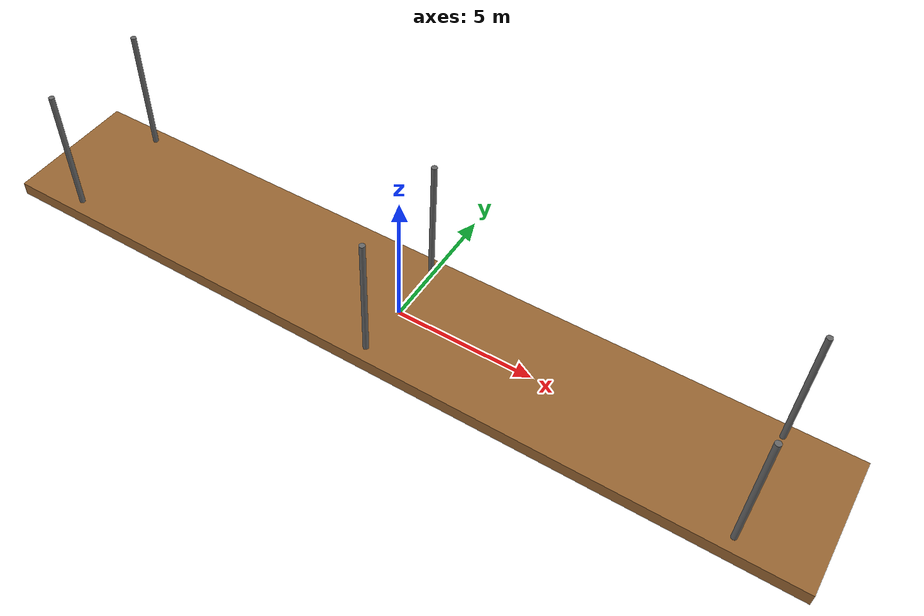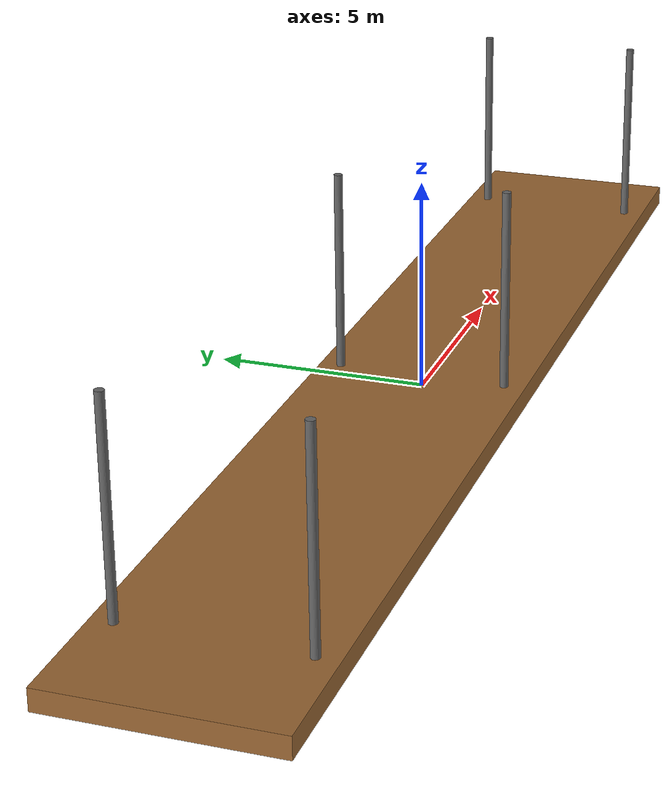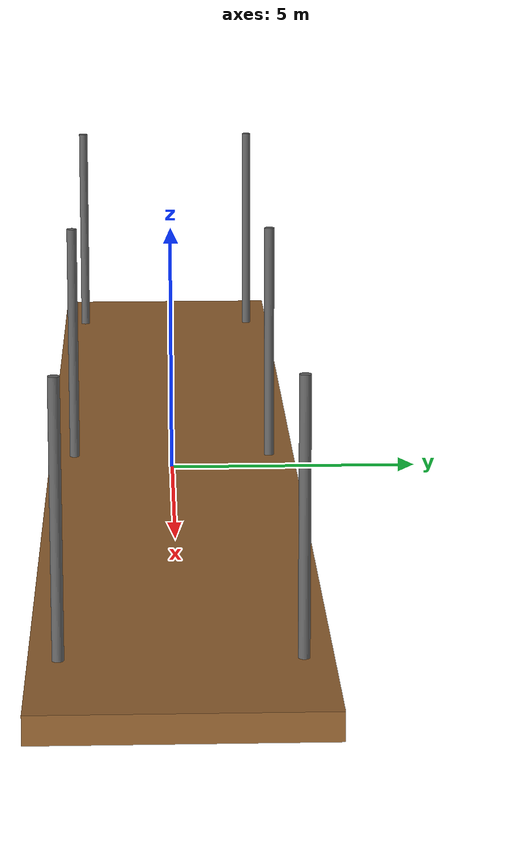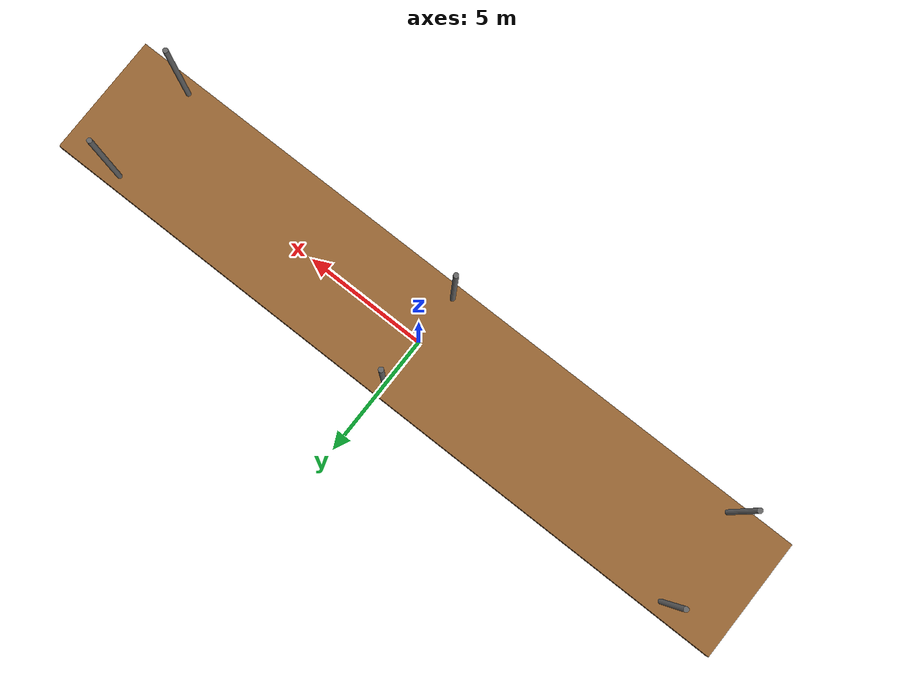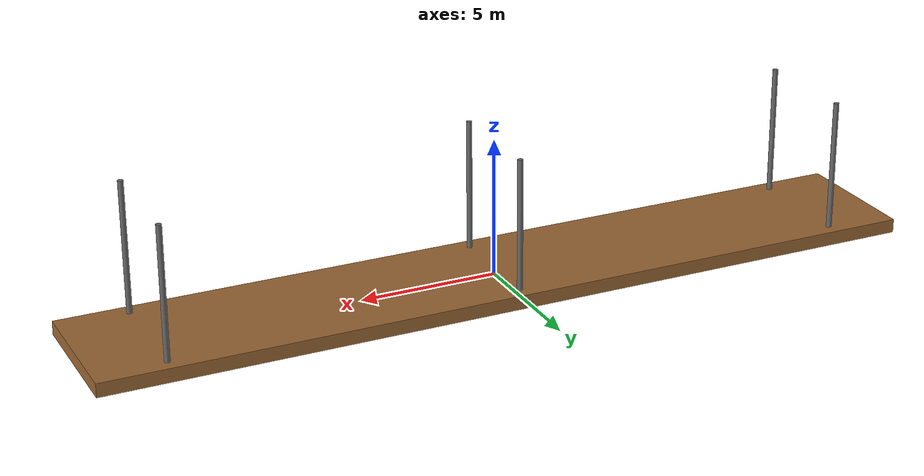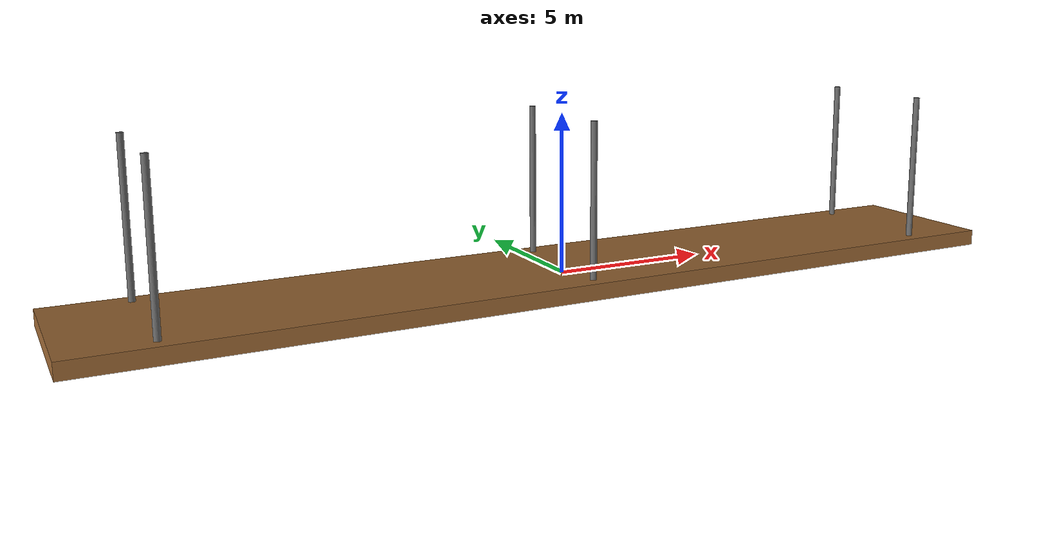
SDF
<?xml version="1.0" ?>
<sdf version="1.9">
  <model name="dock_station">
    <static>True</static>
    <link name="dock_base">
      <pose>0 0 0 0 0 0</pose>
      <!-- Dock Platform -->
      <visual name="dock_platform_visual">
        <geometry>
          <box>
            <size>30 5 0.5</size> <!-- Extended length for 3 WAM-Vs -->
          </box>
        </geometry>
        <material>
          <ambient>0.6 0.4 0.2 1.0</ambient> <!-- Wood-like color -->
          <diffuse>0.6 0.4 0.2 1.0</diffuse>
        </material>
      </visual>
      <collision name="dock_platform_collision">
        <geometry>
          <box>
            <size>30 5 0.5</size> <!-- Extended length for 3 WAM-Vs -->
          </box>
        </geometry>
      </collision>
      <inertial>
        <mass>1500.0</mass>
        <pose>0 0 0 0 0 0</pose>
        <inertia>
          <ixx>416.67</ixx> <!-- Adjusted for new size -->
          <iyy>18750.0</iyy>
          <izz>18750.0</izz>
          <ixy>0.0</ixy>
          <ixz>0.0</ixz>
          <iyz>0.0</iyz>
        </inertia>
      </inertial>
    </link>

    <!-- Left Vertical Poles -->
    <link name="left_pole_1">
      <pose>-12.5 2.0 2.5 0 0 0</pose>
      <visual name="left_pole_1_visual">
        <geometry>
          <cylinder>
            <radius>0.1</radius>
            <length>5</length>
          </cylinder>
        </geometry>
        <material>
          <ambient>0.4 0.4 0.4 1.0</ambient>
          <diffuse>0.4 0.4 0.4 1.0</diffuse>
        </material>
      </visual>
      <collision name="left_pole_1_collision">
        <geometry>
          <cylinder>
            <radius>0.1</radius>
            <length>5</length>
          </cylinder>
        </geometry>
      </collision>
      <inertial>
        <mass>50.0</mass>
        <inertia>
          <ixx>1.04</ixx>
          <iyy>1.04</iyy>
          <izz>0.02</izz>
          <ixy>0.0</ixy>
          <ixz>0.0</ixz>
          <iyz>0.0</iyz>
        </inertia>
      </inertial>
    </link>
    <link name="left_pole_2">
      <pose>0.0 2.0 2.5 0 0 0</pose>
      <visual name="left_pole_2_visual">
        <geometry>
          <cylinder>
            <radius>0.1</radius>
            <length>5</length>
          </cylinder>
        </geometry>
        <material>
          <ambient>0.4 0.4 0.4 1.0</ambient>
          <diffuse>0.4 0.4 0.4 1.0</diffuse>
        </material>
      </visual>
      <collision name="left_pole_2_collision">
        <geometry>
          <cylinder>
            <radius>0.1</radius>
            <length>5</length>
          </cylinder>
        </geometry>
      </collision>
      <inertial>
        <mass>50.0</mass>
        <inertia>
          <ixx>1.04</ixx>
          <iyy>1.04</iyy>
          <izz>0.02</izz>
          <ixy>0.0</ixy>
          <ixz>0.0</ixz>
          <iyz>0.0</iyz>
        </inertia>
      </inertial>
    </link>
    <link name="left_pole_3">
      <pose>12.5 2.0 2.5 0 0 0</pose>
      <visual name="left_pole_3_visual">
        <geometry>
          <cylinder>
            <radius>0.1</radius>
            <length>5</length>
          </cylinder>
        </geometry>
        <material>
          <ambient>0.4 0.4 0.4 1.0</ambient>
          <diffuse>0.4 0.4 0.4 1.0</diffuse>
        </material>
      </visual>
      <collision name="left_pole_3_collision">
        <geometry>
          <cylinder>
            <radius>0.1</radius>
            <length>5</length>
          </cylinder>
        </geometry>
      </collision>
      <inertial>
        <mass>50.0</mass>
        <inertia>
          <ixx>1.04</ixx>
          <iyy>1.04</iyy>
          <izz>0.02</izz>
          <ixy>0.0</ixy>
          <ixz>0.0</ixz>
          <iyz>0.0</iyz>
        </inertia>
      </inertial>
    </link>

    <!-- Right Vertical Poles -->
    <link name="right_pole_1">
      <pose>-12.5 -2.0 2.5 0 0 0</pose>
      <visual name="right_pole_1_visual">
        <geometry>
          <cylinder>
            <radius>0.1</radius>
            <length>5</length>
          </cylinder>
        </geometry>
        <material>
          <ambient>0.4 0.4 0.4 1.0</ambient>
          <diffuse>0.4 0.4 0.4 1.0</diffuse>
        </material>
      </visual>
      <collision name="right_pole_1_collision">
        <geometry>
          <cylinder>
            <radius>0.1</radius>
            <length>5</length>
          </cylinder>
        </geometry>
      </collision>
      <inertial>
        <mass>50.0</mass>
        <inertia>
          <ixx>1.04</ixx>
          <iyy>1.04</iyy>
          <izz>0.02</izz>
          <ixy>0.0</ixy>
          <ixz>0.0</ixz>
          <iyz>0.0</iyz>
        </inertia>
      </inertial>
    </link>
    <link name="right_pole_2">
      <pose>0.0 -2.0 2.5 0 0 0</pose>
      <visual name="right_pole_2_visual">
        <geometry>
          <cylinder>
            <radius>0.1</radius>
            <length>5</length>
          </cylinder>
        </geometry>
        <material>
          <ambient>0.4 0.4 0.4 1.0</ambient>
          <diffuse>0.4 0.4 0.4 1.0</diffuse>
        </material>
      </visual>
      <collision name="right_pole_2_collision">
        <geometry>
          <cylinder>
            <radius>0.1</radius>
            <length>5</length>
          </cylinder>
        </geometry>
      </collision>
      <inertial>
        <mass>50.0</mass>
        <inertia>
          <ixx>1.04</ixx>
          <iyy>1.04</iyy>
          <izz>0.02</izz>
          <ixy>0.0</ixy>
          <ixz>0.0</ixz>
          <iyz>0.0</iyz>
        </inertia>
      </inertial>
    </link>
    <link name="right_pole_3">
      <pose>12.5 -2.0 2.5 0 0 0</pose>
      <visual name="right_pole_3_visual">
        <geometry>
          <cylinder>
            <radius>0.1</radius>
            <length>5</length>
          </cylinder>
        </geometry>
        <material>
          <ambient>0.4 0.4 0.4 1.0</ambient>
          <diffuse>0.4 0.4 0.4 1.0</diffuse>
        </material>
      </visual>
      <collision name="right_pole_3_collision">
        <geometry>
          <cylinder>
            <radius>0.1</radius>
            <length>5</length>
          </cylinder>
        </geometry>
      </collision>
      <inertial>
        <mass>50.0</mass>
        <inertia>
          <ixx>1.04</ixx>
          <iyy>1.04</iyy>
          <izz>0.02</izz>
          <ixy>0.0</ixy>
          <ixz>0.0</ixz>
          <iyz>0.0</iyz>
        </inertia>
      </inertial>
    </link>

    <!-- Fixed Joints for Poles -->
    <joint name="dock_left_pole_1_joint" type="fixed">
      <parent>dock_base</parent>
      <child>left_pole_1</child>
    </joint>
    <joint name="dock_left_pole_2_joint" type="fixed">
      <parent>dock_base</parent>
      <child>left_pole_2</child>
    </joint>
    <joint name="dock_left_pole_3_joint" type="fixed">
      <parent>dock_base</parent>
      <child>left_pole_3</child>
    </joint>
    <joint name="dock_right_pole_1_joint" type="fixed">
      <parent>dock_base</parent>
      <child>right_pole_1</child>
    </joint>
    <joint name="dock_right_pole_2_joint" type="fixed">
      <parent>dock_base</parent>
      <child>right_pole_2</child>
    </joint>
    <joint name="dock_right_pole_3_joint" type="fixed">
      <parent>dock_base</parent>
      <child>right_pole_3</child>
    </joint>

    <!-- Buoyancy Plugin -->
    <plugin name="gz::sim::systems::Buoyancy" filename="gz-sim-buoyancy-system">
      <link_name>dock_base</link_name>
    </plugin>
  </model>
</sdf>
